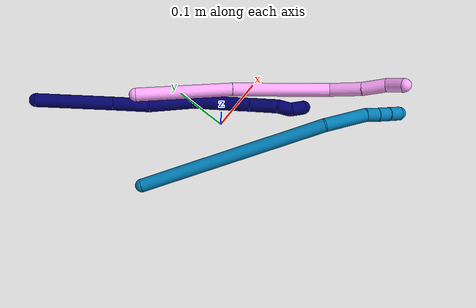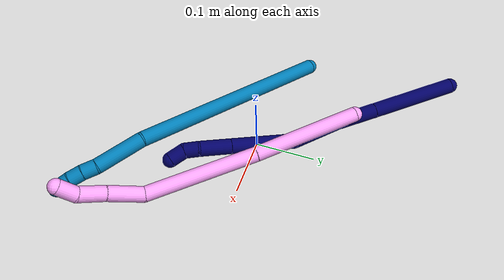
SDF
<sdf version="1.7">
 <world name="default">
  <model name="photoneo_s_sensor">
   <static>1</static>
   <pose>0 0 2 1.57079 1.57079 3.14159</pose>
   <link name="link">
    <inertial><mass>0.1</mass></inertial>
    <sensor name="sensor" type="depth">
     <update_rate>30</update_rate>
     <camera>
      <horizontal_fov>1.22</horizontal_fov>
      <image><width>1920</width><height>1200</height><format>B8G8R8</format></image>
      <clip><near>0.1</near><far>4</far></clip>
      <depth_camera><output>points</output></depth_camera>
     </camera>
     <plugin name="camera_plugin" filename="libgazebo_ros_depth_camera.so">
      <baseline>0.2</baseline>
      <alwaysOn>1</alwaysOn>
      <updateRate>0.0</updateRate>
      <cameraName>camera_ir</cameraName>
      <imageTopicName>/camera/color/image_raw</imageTopicName>
      <cameraInfoTopicName>/camera/color/camera_info</cameraInfoTopicName>
      <depthImageTopicName>/camera/depth/image_raw</depthImageTopicName>
      <depthImageCameraInfoTopicName>/camera/depth/camera_info</depthImageCameraInfoTopicName>
      <pointCloudTopicName>/camera/depth/points</pointCloudTopicName>
      <frameName>fr_optical</frameName>
      <pointCloudCutoff>0.1</pointCloudCutoff>
      <pointCloudCutoffMax>2.0</pointCloudCutoffMax>
      <distortionK1>0</distortionK1>
      <distortionK2>0</distortionK2>
      <distortionK3>0</distortionK3>
      <distortionT1>0</distortionT1>
      <distortionT2>0</distortionT2>
      <CxPrime>0</CxPrime>
      <Cx>0</Cx>
      <Cy>0</Cy>
      <focalLength>0</focalLength>
      <hackBaseline>0</hackBaseline>
     </plugin>
    </sensor>
   </link>
  </model>
  <model name="bin">
   <static>1</static>
   <link name="bottom">
    <collision name="collision-bottom">
     <pose>0 0 -0.01 0 -0 0</pose>
     <geometry><box><size>0.8 0.6 0.02</size></box></geometry>
     <surface>
      <friction><ode><mu>100</mu><mu2>100</mu2></ode></friction>
      <contact><collide_bitmask>65535</collide_bitmask></contact>
     </surface>
    </collision>
   </link>
   <link name="west_wall">
    <collision name="collision-west_wall">
     <pose>-0.41 0 0.1 0 -0 0</pose>
     <geometry><box><size>0.02 0.6 0.2</size></box></geometry>
     <surface>
      <friction><ode><mu>100</mu><mu2>100</mu2></ode></friction>
      <contact><collide_bitmask>65535</collide_bitmask></contact>
     </surface>
    </collision>
   </link>
   <link name="east_wall">
    <collision name="collision-east_wall">
     <pose>0.41 0 0.1 0 -0 0</pose>
     <geometry><box><size>0.02 0.6 0.2</size></box></geometry>
     <surface>
      <friction><ode><mu>100</mu><mu2>100</mu2></ode></friction>
      <contact><collide_bitmask>65535</collide_bitmask></contact>
     </surface>
    </collision>
   </link>
   <link name="south_wall">
    <collision name="collision-south_wall">
     <pose>0 -0.31 0.1 0 -0 0</pose>
     <geometry><box><size>0.8 0.02 0.2</size></box></geometry>
     <surface>
      <friction><ode><mu>100</mu><mu2>100</mu2></ode></friction>
      <contact><collide_bitmask>65535</collide_bitmask></contact>
     </surface>
    </collision>
   </link>
   <link name="north_wall">
    <collision name="collision-north_wall">
     <pose>0 0.31 0.1 0 -0 0</pose>
     <geometry><box><size>0.8 0.02 0.2</size></box></geometry>
     <surface>
      <friction><ode><mu>100</mu><mu2>100</mu2></ode></friction>
      <contact><collide_bitmask>65535</collide_bitmask></contact>
     </surface>
    </collision>
   </link>
  </model>
  <model name="4">
   <static>0</static>
   <link name="4">
    <collision name="collision-cylinder-e_1_1_4">
     <pose>0.075525 -0.039794 0.025304 1.00442 1.01263 0.591223</pose>
     <geometry><cylinder><radius>0.0125</radius><length>0.178077</length></cylinder></geometry>
     <surface>
      <friction><ode><mu>1.16</mu><mu2>1.16</mu2><slip1>0</slip1><slip2>0</slip2></ode></friction>
      <contact><ode><kp>1e+06</kp><kd>1</kd><max_vel>0</max_vel><min_depth>0.001</min_depth></ode></contact>
     </surface>
    </collision>
    <visual name="visual-cylinder-e_1_1_4">
     <pose>0.075525 -0.039794 0.025304 1.00442 1.01263 0.591223</pose>
     <geometry><cylinder><radius>0.0125</radius><length>0.178077</length></cylinder></geometry>
     <material><ambient>1 0.65098 0.996078 1</ambient></material>
    </visual>
    <collision name="collision-cylinder-e_2_4_5">
     <pose>0.231838 -0.116157 0.075875 0.966156 1.06781 0.601372</pose>
     <geometry><cylinder><radius>0.0125</radius><length>0.184419</length></cylinder></geometry>
     <surface>
      <friction><ode><mu>1.16</mu><mu2>1.16</mu2><slip1>0</slip1><slip2>0</slip2></ode></friction>
      <contact><ode><kp>1e+06</kp><kd>1</kd><max_vel>0</max_vel><min_depth>0.001</min_depth></ode></contact>
     </surface>
    </collision>
    <visual name="visual-cylinder-e_2_4_5">
     <pose>0.231838 -0.116157 0.075875 0.966156 1.06781 0.601372</pose>
     <geometry><cylinder><radius>0.0125</radius><length>0.184419</length></cylinder></geometry>
     <material><ambient>1 0.65098 0.996078 1</ambient></material>
    </visual>
    <collision name="collision-cylinder-e_3_5_6">
     <pose>0.338224 -0.167341 0.094981 1.96982 1.01604 1.39613</pose>
     <geometry><cylinder><radius>0.0125</radius><length>0.060226</length></cylinder></geometry>
     <surface>
      <friction><ode><mu>1.16</mu><mu2>1.16</mu2><slip1>0</slip1><slip2>0</slip2></ode></friction>
      <contact><ode><kp>1e+06</kp><kd>1</kd><max_vel>0</max_vel><min_depth>0.001</min_depth></ode></contact>
     </surface>
    </collision>
    <visual name="visual-cylinder-e_3_5_6">
     <pose>0.338224 -0.167341 0.094981 1.96982 1.01604 1.39613</pose>
     <geometry><cylinder><radius>0.0125</radius><length>0.060226</length></cylinder></geometry>
     <material><ambient>1 0.65098 0.996078 1</ambient></material>
    </visual>
    <collision name="collision-cylinder-e_4_6_7">
     <pose>0.381028 -0.194997 0.084345 1.90122 0.895354 1.18387</pose>
     <geometry><cylinder><radius>0.0125</radius><length>0.044096</length></cylinder></geometry>
     <surface>
      <friction><ode><mu>1.16</mu><mu2>1.16</mu2><slip1>0</slip1><slip2>0</slip2></ode></friction>
      <contact><ode><kp>1e+06</kp><kd>1</kd><max_vel>0</max_vel><min_depth>0.001</min_depth></ode></contact>
     </surface>
    </collision>
    <visual name="visual-cylinder-e_4_6_7">
     <pose>0.381028 -0.194997 0.084345 1.90122 0.895354 1.18387</pose>
     <geometry><cylinder><radius>0.0125</radius><length>0.044096</length></cylinder></geometry>
     <material><ambient>1 0.65098 0.996078 1</ambient></material>
    </visual>
    <collision name="collision-cylinder-e_5_7_2">
     <pose>0.410298 -0.214985 0.070847 2.4855 0.814071 1.80503</pose>
     <geometry><cylinder><radius>0.0125</radius><length>0.033182</length></cylinder></geometry>
     <surface>
      <friction><ode><mu>1.16</mu><mu2>1.16</mu2><slip1>0</slip1><slip2>0</slip2></ode></friction>
      <contact><ode><kp>1e+06</kp><kd>1</kd><max_vel>0</max_vel><min_depth>0.001</min_depth></ode></contact>
     </surface>
    </collision>
    <visual name="visual-cylinder-e_5_7_2">
     <pose>0.410298 -0.214985 0.070847 2.4855 0.814071 1.80503</pose>
     <geometry><cylinder><radius>0.0125</radius><length>0.033182</length></cylinder></geometry>
     <material><ambient>1 0.65098 0.996078 1</ambient></material>
    </visual>
    <collision name="collision-sphere-2">
     <pose>0.422361 -0.221933 0.061822 0 -0 0</pose>
     <geometry><sphere><radius>0.0125</radius></sphere></geometry>
     <surface>
      <friction><ode><mu>1.16</mu><mu2>1.16</mu2><slip1>0</slip1><slip2>0</slip2></ode></friction>
      <contact><ode><kp>1e+06</kp><kd>1</kd><max_vel>0</max_vel><min_depth>0.001</min_depth></ode></contact>
     </surface>
    </collision>
    <visual name="visual-sphere-2">
     <pose>0.422361 -0.221933 0.061822 0 -0 0</pose>
     <geometry><sphere><radius>0.0125</radius></sphere></geometry>
     <material><ambient>1 0.65098 0.996078 1</ambient></material>
    </visual>
    <collision name="collision-sphere-7">
     <pose>0.398235 -0.208036 0.079873 0 -0 0</pose>
     <geometry><sphere><radius>0.0125</radius></sphere></geometry>
     <surface>
      <friction><ode><mu>1.16</mu><mu2>1.16</mu2><slip1>0</slip1><slip2>0</slip2></ode></friction>
      <contact><ode><kp>1e+06</kp><kd>1</kd><max_vel>0</max_vel><min_depth>0.001</min_depth></ode></contact>
     </surface>
    </collision>
    <visual name="visual-sphere-7">
     <pose>0.398235 -0.208036 0.079873 0 -0 0</pose>
     <geometry><sphere><radius>0.0125</radius></sphere></geometry>
     <material><ambient>1 0.65098 0.996078 1</ambient></material>
    </visual>
    <collision name="collision-sphere-6">
     <pose>0.363821 -0.181957 0.088818 0 -0 0</pose>
     <geometry><sphere><radius>0.0125</radius></sphere></geometry>
     <surface>
      <friction><ode><mu>1.16</mu><mu2>1.16</mu2><slip1>0</slip1><slip2>0</slip2></ode></friction>
      <contact><ode><kp>1e+06</kp><kd>1</kd><max_vel>0</max_vel><min_depth>0.001</min_depth></ode></contact>
     </surface>
    </collision>
    <visual name="visual-sphere-6">
     <pose>0.363821 -0.181957 0.088818 0 -0 0</pose>
     <geometry><sphere><radius>0.0125</radius></sphere></geometry>
     <material><ambient>1 0.65098 0.996078 1</ambient></material>
    </visual>
    <collision name="collision-sphere-5">
     <pose>0.312627 -0.152726 0.101143 0 -0 0</pose>
     <geometry><sphere><radius>0.0125</radius></sphere></geometry>
     <surface>
      <friction><ode><mu>1.16</mu><mu2>1.16</mu2><slip1>0</slip1><slip2>0</slip2></ode></friction>
      <contact><ode><kp>1e+06</kp><kd>1</kd><max_vel>0</max_vel><min_depth>0.001</min_depth></ode></contact>
     </surface>
    </collision>
    <visual name="visual-sphere-5">
     <pose>0.312627 -0.152726 0.101143 0 -0 0</pose>
     <geometry><sphere><radius>0.0125</radius></sphere></geometry>
     <material><ambient>1 0.65098 0.996078 1</ambient></material>
    </visual>
    <collision name="collision-sphere-1">
     <geometry><sphere><radius>0.0125</radius></sphere></geometry>
     <surface>
      <friction><ode><mu>1.16</mu><mu2>1.16</mu2><slip1>0</slip1><slip2>0</slip2></ode></friction>
      <contact><ode><kp>1e+06</kp><kd>1</kd><max_vel>0</max_vel><min_depth>0.001</min_depth></ode></contact>
     </surface>
    </collision>
    <visual name="visual-sphere-1">
     <geometry><sphere><radius>0.0125</radius></sphere></geometry>
     <material><ambient>1 0.65098 0.996078 1</ambient></material>
    </visual>
    <collision name="collision-sphere-4">
     <pose>0.151049 -0.079588 0.050607 0 -0 0</pose>
     <geometry><sphere><radius>0.0125</radius></sphere></geometry>
     <surface>
      <friction><ode><mu>1.16</mu><mu2>1.16</mu2><slip1>0</slip1><slip2>0</slip2></ode></friction>
      <contact><ode><kp>1e+06</kp><kd>1</kd><max_vel>0</max_vel><min_depth>0.001</min_depth></ode></contact>
     </surface>
    </collision>
    <visual name="visual-sphere-4">
     <pose>0.151049 -0.079588 0.050607 0 -0 0</pose>
     <geometry><sphere><radius>0.0125</radius></sphere></geometry>
     <material><ambient>1 0.65098 0.996078 1</ambient></material>
    </visual>
    <inertial>
     <pose>0.213982 -0.108637 0.060579 0 -0 0</pose>
     <mass>0.5</mass>
     <inertia>
      <ixx>0.000761</ixx>
      <ixy>0</ixy>
      <ixz>0</ixz>
      <iyy>0.001177</iyy>
      <iyz>0</iyz>
      <izz>-0.000451</izz>
     </inertia>
    </inertial>
   </link>
   <pose>-0.065358 0.148776 0.060987 -2.68668 0.003284 -1.37656</pose>
  </model>
  <model name="7">
   <static>0</static>
   <link name="7">
    <collision name="collision-cylinder-e_1_1_4">
     <pose>0.019184 -0.005102 -0.067589 3.06626 0.275814 2.6113</pose>
     <geometry><cylinder><radius>0.0125</radius><length>0.140888</length></cylinder></geometry>
     <surface>
      <friction><ode><mu>1.16</mu><mu2>1.16</mu2><slip1>0</slip1><slip2>0</slip2></ode></friction>
      <contact><ode><kp>1e+06</kp><kd>1</kd><max_vel>0</max_vel><min_depth>0.001</min_depth></ode></contact>
     </surface>
    </collision>
    <visual name="visual-cylinder-e_1_1_4">
     <pose>0.019184 -0.005102 -0.067589 3.06626 0.275814 2.6113</pose>
     <geometry><cylinder><radius>0.0125</radius><length>0.140888</length></cylinder></geometry>
     <material><ambient>0.003922 0 0.403922 1</ambient></material>
    </visual>
    <collision name="collision-cylinder-e_2_4_5">
     <pose>0.047494 -0.012344 -0.167468 3.07539 0.274876 2.67162</pose>
     <geometry><cylinder><radius>0.0125</radius><length>0.067246</length></cylinder></geometry>
     <surface>
      <friction><ode><mu>1.16</mu><mu2>1.16</mu2><slip1>0</slip1><slip2>0</slip2></ode></friction>
      <contact><ode><kp>1e+06</kp><kd>1</kd><max_vel>0</max_vel><min_depth>0.001</min_depth></ode></contact>
     </surface>
    </collision>
    <visual name="visual-cylinder-e_2_4_5">
     <pose>0.047494 -0.012344 -0.167468 3.07539 0.274876 2.67162</pose>
     <geometry><cylinder><radius>0.0125</radius><length>0.067246</length></cylinder></geometry>
     <material><ambient>0.003922 0 0.403922 1</ambient></material>
    </visual>
    <collision name="collision-cylinder-e_3_5_6">
     <pose>0.066735 -0.022511 -0.238793 2.9388 0.248547 1.77455</pose>
     <geometry><cylinder><radius>0.0125</radius><length>0.08223</length></cylinder></geometry>
     <surface>
      <friction><ode><mu>1.16</mu><mu2>1.16</mu2><slip1>0</slip1><slip2>0</slip2></ode></friction>
      <contact><ode><kp>1e+06</kp><kd>1</kd><max_vel>0</max_vel><min_depth>0.001</min_depth></ode></contact>
     </surface>
    </collision>
    <visual name="visual-cylinder-e_3_5_6">
     <pose>0.066735 -0.022511 -0.238793 2.9388 0.248547 1.77455</pose>
     <geometry><cylinder><radius>0.0125</radius><length>0.08223</length></cylinder></geometry>
     <material><ambient>0.003922 0 0.403922 1</ambient></material>
    </visual>
    <collision name="collision-cylinder-e_4_6_7">
     <pose>0.076831 -0.03061 -0.332356 3.14027 -0.000316 -0.468833</pose>
     <geometry><cylinder><radius>0.0125</radius><length>0.109056</length></cylinder></geometry>
     <surface>
      <friction><ode><mu>1.16</mu><mu2>1.16</mu2><slip1>0</slip1><slip2>0</slip2></ode></friction>
      <contact><ode><kp>1e+06</kp><kd>1</kd><max_vel>0</max_vel><min_depth>0.001</min_depth></ode></contact>
     </surface>
    </collision>
    <visual name="visual-cylinder-e_4_6_7">
     <pose>0.076831 -0.03061 -0.332356 3.14027 -0.000316 -0.468833</pose>
     <geometry><cylinder><radius>0.0125</radius><length>0.109056</length></cylinder></geometry>
     <material><ambient>0.003922 0 0.403922 1</ambient></material>
    </visual>
    <collision name="collision-cylinder-e_5_7_8">
     <pose>0.077023 -0.030554 -0.412418 -3.1366 0.008177 -2.04602</pose>
     <geometry><cylinder><radius>0.0125</radius><length>0.051071</length></cylinder></geometry>
     <surface>
      <friction><ode><mu>1.16</mu><mu2>1.16</mu2><slip1>0</slip1><slip2>0</slip2></ode></friction>
      <contact><ode><kp>1e+06</kp><kd>1</kd><max_vel>0</max_vel><min_depth>0.001</min_depth></ode></contact>
     </surface>
    </collision>
    <visual name="visual-cylinder-e_5_7_8">
     <pose>0.077023 -0.030554 -0.412418 -3.1366 0.008177 -2.04602</pose>
     <geometry><cylinder><radius>0.0125</radius><length>0.051071</length></cylinder></geometry>
     <material><ambient>0.003922 0 0.403922 1</ambient></material>
    </visual>
    <collision name="collision-cylinder-e_6_8_9">
     <pose>0.079995 -0.0287 -0.449305 -2.99059 0.236103 -2.00607</pose>
     <geometry><cylinder><radius>0.0125</radius><length>0.023622</length></cylinder></geometry>
     <surface>
      <friction><ode><mu>1.16</mu><mu2>1.16</mu2><slip1>0</slip1><slip2>0</slip2></ode></friction>
      <contact><ode><kp>1e+06</kp><kd>1</kd><max_vel>0</max_vel><min_depth>0.001</min_depth></ode></contact>
     </surface>
    </collision>
    <visual name="visual-cylinder-e_6_8_9">
     <pose>0.079995 -0.0287 -0.449305 -2.99059 0.236103 -2.00607</pose>
     <geometry><cylinder><radius>0.0125</radius><length>0.023622</length></cylinder></geometry>
     <material><ambient>0.003922 0 0.403922 1</ambient></material>
    </visual>
    <collision name="collision-cylinder-e_7_9_2">
     <pose>0.0879 -0.030743 -0.471921 2.81854 0.408615 1.80878</pose>
     <geometry><cylinder><radius>0.0125</radius><length>0.025887</length></cylinder></geometry>
     <surface>
      <friction><ode><mu>1.16</mu><mu2>1.16</mu2><slip1>0</slip1><slip2>0</slip2></ode></friction>
      <contact><ode><kp>1e+06</kp><kd>1</kd><max_vel>0</max_vel><min_depth>0.001</min_depth></ode></contact>
     </surface>
    </collision>
    <visual name="visual-cylinder-e_7_9_2">
     <pose>0.0879 -0.030743 -0.471921 2.81854 0.408615 1.80878</pose>
     <geometry><cylinder><radius>0.0125</radius><length>0.025887</length></cylinder></geometry>
     <material><ambient>0.003922 0 0.403922 1</ambient></material>
    </visual>
    <collision name="collision-sphere-2">
     <pose>0.093043 -0.034514 -0.483185 0 -0 0</pose>
     <geometry><sphere><radius>0.0125</radius></sphere></geometry>
     <surface>
      <friction><ode><mu>1.16</mu><mu2>1.16</mu2><slip1>0</slip1><slip2>0</slip2></ode></friction>
      <contact><ode><kp>1e+06</kp><kd>1</kd><max_vel>0</max_vel><min_depth>0.001</min_depth></ode></contact>
     </surface>
    </collision>
    <visual name="visual-sphere-2">
     <pose>0.093043 -0.034514 -0.483185 0 -0 0</pose>
     <geometry><sphere><radius>0.0125</radius></sphere></geometry>
     <material><ambient>0.003922 0 0.403922 1</ambient></material>
    </visual>
    <collision name="collision-sphere-9">
     <pose>0.082757 -0.026972 -0.460658 0 -0 0</pose>
     <geometry><sphere><radius>0.0125</radius></sphere></geometry>
     <surface>
      <friction><ode><mu>1.16</mu><mu2>1.16</mu2><slip1>0</slip1><slip2>0</slip2></ode></friction>
      <contact><ode><kp>1e+06</kp><kd>1</kd><max_vel>0</max_vel><min_depth>0.001</min_depth></ode></contact>
     </surface>
    </collision>
    <visual name="visual-sphere-9">
     <pose>0.082757 -0.026972 -0.460658 0 -0 0</pose>
     <geometry><sphere><radius>0.0125</radius></sphere></geometry>
     <material><ambient>0.003922 0 0.403922 1</ambient></material>
    </visual>
    <collision name="collision-sphere-4">
     <pose>0.038368 -0.010203 -0.135179 0 -0 0</pose>
     <geometry><sphere><radius>0.0125</radius></sphere></geometry>
     <surface>
      <friction><ode><mu>1.16</mu><mu2>1.16</mu2><slip1>0</slip1><slip2>0</slip2></ode></friction>
      <contact><ode><kp>1e+06</kp><kd>1</kd><max_vel>0</max_vel><min_depth>0.001</min_depth></ode></contact>
     </surface>
    </collision>
    <visual name="visual-sphere-4">
     <pose>0.038368 -0.010203 -0.135179 0 -0 0</pose>
     <geometry><sphere><radius>0.0125</radius></sphere></geometry>
     <material><ambient>0.003922 0 0.403922 1</ambient></material>
    </visual>
    <collision name="collision-sphere-1">
     <geometry><sphere><radius>0.0125</radius></sphere></geometry>
     <surface>
      <friction><ode><mu>1.16</mu><mu2>1.16</mu2><slip1>0</slip1><slip2>0</slip2></ode></friction>
      <contact><ode><kp>1e+06</kp><kd>1</kd><max_vel>0</max_vel><min_depth>0.001</min_depth></ode></contact>
     </surface>
    </collision>
    <visual name="visual-sphere-1">
     <geometry><sphere><radius>0.0125</radius></sphere></geometry>
     <material><ambient>0.003922 0 0.403922 1</ambient></material>
    </visual>
    <collision name="collision-sphere-8">
     <pose>0.077232 -0.030427 -0.437952 0 -0 0</pose>
     <geometry><sphere><radius>0.0125</radius></sphere></geometry>
     <surface>
      <friction><ode><mu>1.16</mu><mu2>1.16</mu2><slip1>0</slip1><slip2>0</slip2></ode></friction>
      <contact><ode><kp>1e+06</kp><kd>1</kd><max_vel>0</max_vel><min_depth>0.001</min_depth></ode></contact>
     </surface>
    </collision>
    <visual name="visual-sphere-8">
     <pose>0.077232 -0.030427 -0.437952 0 -0 0</pose>
     <geometry><sphere><radius>0.0125</radius></sphere></geometry>
     <material><ambient>0.003922 0 0.403922 1</ambient></material>
    </visual>
    <collision name="collision-sphere-5">
     <pose>0.05662 -0.014485 -0.199758 0 -0 0</pose>
     <geometry><sphere><radius>0.0125</radius></sphere></geometry>
     <surface>
      <friction><ode><mu>1.16</mu><mu2>1.16</mu2><slip1>0</slip1><slip2>0</slip2></ode></friction>
      <contact><ode><kp>1e+06</kp><kd>1</kd><max_vel>0</max_vel><min_depth>0.001</min_depth></ode></contact>
     </surface>
    </collision>
    <visual name="visual-sphere-5">
     <pose>0.05662 -0.014485 -0.199758 0 -0 0</pose>
     <geometry><sphere><radius>0.0125</radius></sphere></geometry>
     <material><ambient>0.003922 0 0.403922 1</ambient></material>
    </visual>
    <collision name="collision-sphere-6">
     <pose>0.076849 -0.030537 -0.277828 0 -0 0</pose>
     <geometry><sphere><radius>0.0125</radius></sphere></geometry>
     <surface>
      <friction><ode><mu>1.16</mu><mu2>1.16</mu2><slip1>0</slip1><slip2>0</slip2></ode></friction>
      <contact><ode><kp>1e+06</kp><kd>1</kd><max_vel>0</max_vel><min_depth>0.001</min_depth></ode></contact>
     </surface>
    </collision>
    <visual name="visual-sphere-6">
     <pose>0.076849 -0.030537 -0.277828 0 -0 0</pose>
     <geometry><sphere><radius>0.0125</radius></sphere></geometry>
     <material><ambient>0.003922 0 0.403922 1</ambient></material>
    </visual>
    <collision name="collision-sphere-7">
     <pose>0.076814 -0.030682 -0.386884 0 -0 0</pose>
     <geometry><sphere><radius>0.0125</radius></sphere></geometry>
     <surface>
      <friction><ode><mu>1.16</mu><mu2>1.16</mu2><slip1>0</slip1><slip2>0</slip2></ode></friction>
      <contact><ode><kp>1e+06</kp><kd>1</kd><max_vel>0</max_vel><min_depth>0.001</min_depth></ode></contact>
     </surface>
    </collision>
    <visual name="visual-sphere-7">
     <pose>0.076814 -0.030682 -0.386884 0 -0 0</pose>
     <geometry><sphere><radius>0.0125</radius></sphere></geometry>
     <material><ambient>0.003922 0 0.403922 1</ambient></material>
    </visual>
    <inertial>
     <pose>0.055724 -0.019545 -0.241116 0 -0 0</pose>
     <mass>0.5</mass>
     <inertia>
      <ixx>-1.8e-05</ixx>
      <ixy>0</ixy>
      <ixz>0</ixz>
      <iyy>0.000263</iyy>
      <iyz>0</iyz>
      <izz>-9.5e-05</izz>
     </inertia>
    </inertial>
   </link>
   <pose>-0.187043 0.28828 0.053252 -2.9791 1.3831 -0.834799</pose>
  </model>
  <model name="9">
   <static>0</static>
   <link name="9">
    <collision name="collision-cylinder-e_1_1_4">
     <pose>0.036382 -0.039924 0.16688 0.234827 0.208933 0.024734</pose>
     <geometry><cylinder><radius>0.0125</radius><length>0.350807</length></cylinder></geometry>
     <surface>
      <friction><ode><mu>1.16</mu><mu2>1.16</mu2><slip1>0</slip1><slip2>0</slip2></ode></friction>
      <contact><ode><kp>1e+06</kp><kd>1</kd><max_vel>0</max_vel><min_depth>0.001</min_depth></ode></contact>
     </surface>
    </collision>
    <visual name="visual-cylinder-e_1_1_4">
     <pose>0.036382 -0.039924 0.16688 0.234827 0.208933 0.024734</pose>
     <geometry><cylinder><radius>0.0125</radius><length>0.350807</length></cylinder></geometry>
     <material><ambient>0 0.490196 0.709804 1</ambient></material>
    </visual>
    <collision name="collision-cylinder-e_2_4_5">
     <pose>0.071842 -0.092684 0.371538 0.327499 -0.023088 -0.003815</pose>
     <geometry><cylinder><radius>0.0125</radius><length>0.07982</length></cylinder></geometry>
     <surface>
      <friction><ode><mu>1.16</mu><mu2>1.16</mu2><slip1>0</slip1><slip2>0</slip2></ode></friction>
      <contact><ode><kp>1e+06</kp><kd>1</kd><max_vel>0</max_vel><min_depth>0.001</min_depth></ode></contact>
     </surface>
    </collision>
    <visual name="visual-cylinder-e_2_4_5">
     <pose>0.071842 -0.092684 0.371538 0.327499 -0.023088 -0.003815</pose>
     <geometry><cylinder><radius>0.0125</radius><length>0.07982</length></cylinder></geometry>
     <material><ambient>0 0.490196 0.709804 1</ambient></material>
    </visual>
    <collision name="collision-cylinder-e_3_5_6">
     <pose>0.069076 -0.107262 0.420573 0.153698 -0.160571 -0.012391</pose>
     <geometry><cylinder><radius>0.0125</radius><length>0.023077</length></cylinder></geometry>
     <surface>
      <friction><ode><mu>1.16</mu><mu2>1.16</mu2><slip1>0</slip1><slip2>0</slip2></ode></friction>
      <contact><ode><kp>1e+06</kp><kd>1</kd><max_vel>0</max_vel><min_depth>0.001</min_depth></ode></contact>
     </surface>
    </collision>
    <visual name="visual-cylinder-e_3_5_6">
     <pose>0.069076 -0.107262 0.420573 0.153698 -0.160571 -0.012391</pose>
     <geometry><cylinder><radius>0.0125</radius><length>0.023077</length></cylinder></geometry>
     <material><ambient>0 0.490196 0.709804 1</ambient></material>
    </visual>
    <collision name="collision-cylinder-e_4_6_7">
     <pose>0.064807 -0.111832 0.442144 0.267462 -0.222849 -0.030103</pose>
     <geometry><cylinder><radius>0.0125</radius><length>0.021934</length></cylinder></geometry>
     <surface>
      <friction><ode><mu>1.16</mu><mu2>1.16</mu2><slip1>0</slip1><slip2>0</slip2></ode></friction>
      <contact><ode><kp>1e+06</kp><kd>1</kd><max_vel>0</max_vel><min_depth>0.001</min_depth></ode></contact>
     </surface>
    </collision>
    <visual name="visual-cylinder-e_4_6_7">
     <pose>0.064807 -0.111832 0.442144 0.267462 -0.222849 -0.030103</pose>
     <geometry><cylinder><radius>0.0125</radius><length>0.021934</length></cylinder></geometry>
     <material><ambient>0 0.490196 0.709804 1</ambient></material>
    </visual>
    <collision name="collision-cylinder-e_5_7_2">
     <pose>0.058596 -0.118786 0.463276 0.36452 -0.316181 -0.058747</pose>
     <geometry><cylinder><radius>0.0125</radius><length>0.024362</length></cylinder></geometry>
     <surface>
      <friction><ode><mu>1.16</mu><mu2>1.16</mu2><slip1>0</slip1><slip2>0</slip2></ode></friction>
      <contact><ode><kp>1e+06</kp><kd>1</kd><max_vel>0</max_vel><min_depth>0.001</min_depth></ode></contact>
     </surface>
    </collision>
    <visual name="visual-cylinder-e_5_7_2">
     <pose>0.058596 -0.118786 0.463276 0.36452 -0.316181 -0.058747</pose>
     <geometry><cylinder><radius>0.0125</radius><length>0.024362</length></cylinder></geometry>
     <material><ambient>0 0.490196 0.709804 1</ambient></material>
    </visual>
    <collision name="collision-sphere-2">
     <pose>0.054808 -0.122914 0.474092 0 -0 0</pose>
     <geometry><sphere><radius>0.0125</radius></sphere></geometry>
     <surface>
      <friction><ode><mu>1.16</mu><mu2>1.16</mu2><slip1>0</slip1><slip2>0</slip2></ode></friction>
      <contact><ode><kp>1e+06</kp><kd>1</kd><max_vel>0</max_vel><min_depth>0.001</min_depth></ode></contact>
     </surface>
    </collision>
    <visual name="visual-sphere-2">
     <pose>0.054808 -0.122914 0.474092 0 -0 0</pose>
     <geometry><sphere><radius>0.0125</radius></sphere></geometry>
     <material><ambient>0 0.490196 0.709804 1</ambient></material>
    </visual>
    <collision name="collision-sphere-7">
     <pose>0.062383 -0.114659 0.452459 0 -0 0</pose>
     <geometry><sphere><radius>0.0125</radius></sphere></geometry>
     <surface>
      <friction><ode><mu>1.16</mu><mu2>1.16</mu2><slip1>0</slip1><slip2>0</slip2></ode></friction>
      <contact><ode><kp>1e+06</kp><kd>1</kd><max_vel>0</max_vel><min_depth>0.001</min_depth></ode></contact>
     </surface>
    </collision>
    <visual name="visual-sphere-7">
     <pose>0.062383 -0.114659 0.452459 0 -0 0</pose>
     <geometry><sphere><radius>0.0125</radius></sphere></geometry>
     <material><ambient>0 0.490196 0.709804 1</ambient></material>
    </visual>
    <collision name="collision-sphere-6">
     <pose>0.067231 -0.109006 0.431829 0 -0 0</pose>
     <geometry><sphere><radius>0.0125</radius></sphere></geometry>
     <surface>
      <friction><ode><mu>1.16</mu><mu2>1.16</mu2><slip1>0</slip1><slip2>0</slip2></ode></friction>
      <contact><ode><kp>1e+06</kp><kd>1</kd><max_vel>0</max_vel><min_depth>0.001</min_depth></ode></contact>
     </surface>
    </collision>
    <visual name="visual-sphere-6">
     <pose>0.067231 -0.109006 0.431829 0 -0 0</pose>
     <geometry><sphere><radius>0.0125</radius></sphere></geometry>
     <material><ambient>0 0.490196 0.709804 1</ambient></material>
    </visual>
    <collision name="collision-sphere-5">
     <pose>0.07092 -0.105518 0.409317 0 -0 0</pose>
     <geometry><sphere><radius>0.0125</radius></sphere></geometry>
     <surface>
      <friction><ode><mu>1.16</mu><mu2>1.16</mu2><slip1>0</slip1><slip2>0</slip2></ode></friction>
      <contact><ode><kp>1e+06</kp><kd>1</kd><max_vel>0</max_vel><min_depth>0.001</min_depth></ode></contact>
     </surface>
    </collision>
    <visual name="visual-sphere-5">
     <pose>0.07092 -0.105518 0.409317 0 -0 0</pose>
     <geometry><sphere><radius>0.0125</radius></sphere></geometry>
     <material><ambient>0 0.490196 0.709804 1</ambient></material>
    </visual>
    <collision name="collision-sphere-1">
     <geometry><sphere><radius>0.0125</radius></sphere></geometry>
     <surface>
      <friction><ode><mu>1.16</mu><mu2>1.16</mu2><slip1>0</slip1><slip2>0</slip2></ode></friction>
      <contact><ode><kp>1e+06</kp><kd>1</kd><max_vel>0</max_vel><min_depth>0.001</min_depth></ode></contact>
     </surface>
    </collision>
    <visual name="visual-sphere-1">
     <geometry><sphere><radius>0.0125</radius></sphere></geometry>
     <material><ambient>0 0.490196 0.709804 1</ambient></material>
    </visual>
    <collision name="collision-sphere-4">
     <pose>0.072763 -0.079849 0.33376 0 -0 0</pose>
     <geometry><sphere><radius>0.0125</radius></sphere></geometry>
     <surface>
      <friction><ode><mu>1.16</mu><mu2>1.16</mu2><slip1>0</slip1><slip2>0</slip2></ode></friction>
      <contact><ode><kp>1e+06</kp><kd>1</kd><max_vel>0</max_vel><min_depth>0.001</min_depth></ode></contact>
     </surface>
    </collision>
    <visual name="visual-sphere-4">
     <pose>0.072763 -0.079849 0.33376 0 -0 0</pose>
     <geometry><sphere><radius>0.0125</radius></sphere></geometry>
     <material><ambient>0 0.490196 0.709804 1</ambient></material>
    </visual>
    <inertial>
     <pose>0.045881 -0.058452 0.237777 0 -0 0</pose>
     <mass>0.5</mass>
     <inertia>
      <ixx>0.003674</ixx>
      <ixy>0</ixy>
      <ixz>0</ixz>
      <iyy>0.003642</iyy>
      <iyz>0</iyz>
      <izz>0.000128</izz>
     </inertia>
    </inertial>
   </link>
   <pose>-0.185758 0.03914 0.021805 1.4118 -1.06336 0.806356</pose>
  </model>
 </world>
</sdf>
